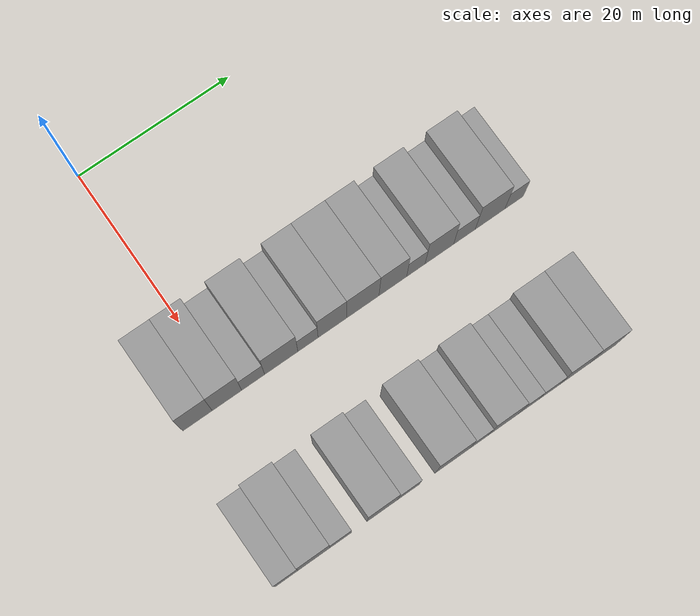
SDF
<sdf version="1.6">
 <world name="default">
  <model name="building_48">
   <static>1</static>
   <pose>25.0000 -4.2827 0 0.000000 0.000000 0.000000</pose>
   <link name="link">
    <pose>0 0 4.50 0 0 0</pose>
    <collision name="collision"><geometry><box><size>10.0000 3.7647 9.0000</size></box></geometry></collision>
    <visual name="visual">
     <cast_shadows>0</cast_shadows>
     <geometry><box><size>10.0000 3.7647 9.0000</size></box></geometry>
     <material>
      <script>
       <uri>model://grey_wall/materials/scripts</uri>
       <uri>model://grey_wall/materials/textures</uri>
       <name>vrc/grey_wall</name>
      </script>
     </material>
    </visual>
   </link>
  </model>
  <model name="building_49">
   <static>1</static>
   <pose>25.0000 -0.5022 0 0.000000 0.000000 0.000000</pose>
   <link name="link">
    <pose>0 0 4.50 0 0 0</pose>
    <collision name="collision"><geometry><box><size>10.0000 3.7964 9.0000</size></box></geometry></collision>
    <visual name="visual">
     <cast_shadows>0</cast_shadows>
     <geometry><box><size>10.0000 3.7964 9.0000</size></box></geometry>
     <material>
      <script>
       <uri>model://grey_wall/materials/scripts</uri>
       <uri>model://grey_wall/materials/textures</uri>
       <name>vrc/grey_wall</name>
      </script>
     </material>
    </visual>
   </link>
  </model>
  <model name="building_50">
   <static>1</static>
   <pose>25.0000 2.8793 0 0.000000 0.000000 0.000000</pose>
   <link name="link">
    <pose>0 0 3.00 0 0 0</pose>
    <collision name="collision"><geometry><box><size>10.0000 2.9666 6.0000</size></box></geometry></collision>
    <visual name="visual">
     <cast_shadows>0</cast_shadows>
     <geometry><box><size>10.0000 2.9666 6.0000</size></box></geometry>
     <material>
      <script>
       <uri>model://grey_wall/materials/scripts</uri>
       <uri>model://grey_wall/materials/textures</uri>
       <name>vrc/grey_wall</name>
      </script>
     </material>
    </visual>
   </link>
  </model>
  <model name="building_51">
   <static>1</static>
   <pose>25.0000 6.5234 0 0.000000 0.000000 0.000000</pose>
   <link name="link">
    <pose>0 0 4.50 0 0 0</pose>
    <collision name="collision"><geometry><box><size>10.0000 4.3214 9.0000</size></box></geometry></collision>
    <visual name="visual">
     <cast_shadows>0</cast_shadows>
     <geometry><box><size>10.0000 4.3214 9.0000</size></box></geometry>
     <material>
      <script>
       <uri>model://grey_wall/materials/scripts</uri>
       <uri>model://grey_wall/materials/textures</uri>
       <name>vrc/grey_wall</name>
      </script>
     </material>
    </visual>
   </link>
  </model>
  <model name="building_52">
   <static>1</static>
   <pose>25.0000 9.9989 0 0.000000 0.000000 0.000000</pose>
   <link name="link">
    <pose>0 0 3.00 0 0 0</pose>
    <collision name="collision"><geometry><box><size>10.0000 2.6296 6.0000</size></box></geometry></collision>
    <visual name="visual">
     <cast_shadows>0</cast_shadows>
     <geometry><box><size>10.0000 2.6296 6.0000</size></box></geometry>
     <material>
      <script>
       <uri>model://grey_wall/materials/scripts</uri>
       <uri>model://grey_wall/materials/textures</uri>
       <name>vrc/grey_wall</name>
      </script>
     </material>
    </visual>
   </link>
  </model>
  <model name="building_53">
   <static>1</static>
   <pose>25.0000 13.1832 0 0.000000 0.000000 0.000000</pose>
   <link name="link">
    <pose>0 0 4.50 0 0 0</pose>
    <collision name="collision"><geometry><box><size>10.0000 3.7391 9.0000</size></box></geometry></collision>
    <visual name="visual">
     <cast_shadows>0</cast_shadows>
     <geometry><box><size>10.0000 3.7391 9.0000</size></box></geometry>
     <material>
      <script>
       <uri>model://grey_wall/materials/scripts</uri>
       <uri>model://grey_wall/materials/textures</uri>
       <name>vrc/grey_wall</name>
      </script>
     </material>
    </visual>
   </link>
  </model>
  <model name="building_54">
   <static>1</static>
   <pose>25.0000 17.1880 0 0.000000 0.000000 0.000000</pose>
   <link name="link">
    <pose>0 0 4.50 0 0 0</pose>
    <collision name="collision"><geometry><box><size>10.0000 4.2704 9.0000</size></box></geometry></collision>
    <visual name="visual">
     <cast_shadows>0</cast_shadows>
     <geometry><box><size>10.0000 4.2704 9.0000</size></box></geometry>
     <material>
      <script>
       <uri>model://grey_wall/materials/scripts</uri>
       <uri>model://grey_wall/materials/textures</uri>
       <name>vrc/grey_wall</name>
      </script>
     </material>
    </visual>
   </link>
  </model>
  <model name="building_55">
   <static>1</static>
   <pose>25.0000 21.1577 0 0.000000 0.000000 0.000000</pose>
   <link name="link">
    <pose>0 0 4.50 0 0 0</pose>
    <collision name="collision"><geometry><box><size>10.0000 3.6692 9.0000</size></box></geometry></collision>
    <visual name="visual">
     <cast_shadows>0</cast_shadows>
     <geometry><box><size>10.0000 3.6692 9.0000</size></box></geometry>
     <material>
      <script>
       <uri>model://grey_wall/materials/scripts</uri>
       <uri>model://grey_wall/materials/textures</uri>
       <name>vrc/grey_wall</name>
      </script>
     </material>
    </visual>
   </link>
  </model>
  <model name="building_56">
   <static>1</static>
   <pose>25.0000 24.2247 0 0.000000 0.000000 0.000000</pose>
   <link name="link">
    <pose>0 0 3.00 0 0 0</pose>
    <collision name="collision"><geometry><box><size>10.0000 2.4648 6.0000</size></box></geometry></collision>
    <visual name="visual">
     <cast_shadows>0</cast_shadows>
     <geometry><box><size>10.0000 2.4648 6.0000</size></box></geometry>
     <material>
      <script>
       <uri>model://grey_wall/materials/scripts</uri>
       <uri>model://grey_wall/materials/textures</uri>
       <name>vrc/grey_wall</name>
      </script>
     </material>
    </visual>
   </link>
  </model>
  <model name="building_57">
   <static>1</static>
   <pose>25.0000 27.3652 0 0.000000 0.000000 0.000000</pose>
   <link name="link">
    <pose>0 0 4.50 0 0 0</pose>
    <collision name="collision"><geometry><box><size>10.0000 3.8161 9.0000</size></box></geometry></collision>
    <visual name="visual">
     <cast_shadows>0</cast_shadows>
     <geometry><box><size>10.0000 3.8161 9.0000</size></box></geometry>
     <material>
      <script>
       <uri>model://grey_wall/materials/scripts</uri>
       <uri>model://grey_wall/materials/textures</uri>
       <name>vrc/grey_wall</name>
      </script>
     </material>
    </visual>
   </link>
  </model>
  <model name="building_58">
   <static>1</static>
   <pose>25.0000 30.7295 0 0.000000 0.000000 0.000000</pose>
   <link name="link">
    <pose>0 0 3.00 0 0 0</pose>
    <collision name="collision"><geometry><box><size>10.0000 2.9127 6.0000</size></box></geometry></collision>
    <visual name="visual">
     <cast_shadows>0</cast_shadows>
     <geometry><box><size>10.0000 2.9127 6.0000</size></box></geometry>
     <material>
      <script>
       <uri>model://grey_wall/materials/scripts</uri>
       <uri>model://grey_wall/materials/textures</uri>
       <name>vrc/grey_wall</name>
      </script>
     </material>
    </visual>
   </link>
  </model>
  <model name="building_59">
   <static>1</static>
   <pose>25.0000 34.1914 0 0.000000 0.000000 0.000000</pose>
   <link name="link">
    <pose>0 0 4.50 0 0 0</pose>
    <collision name="collision"><geometry><box><size>10.0000 4.0110 9.0000</size></box></geometry></collision>
    <visual name="visual">
     <cast_shadows>0</cast_shadows>
     <geometry><box><size>10.0000 4.0110 9.0000</size></box></geometry>
     <material>
      <script>
       <uri>model://grey_wall/materials/scripts</uri>
       <uri>model://grey_wall/materials/textures</uri>
       <name>vrc/grey_wall</name>
      </script>
     </material>
    </visual>
   </link>
  </model>
  <model name="building_60">
   <static>1</static>
   <pose>25.0000 37.4595 0 0.000000 0.000000 0.000000</pose>
   <link name="link">
    <pose>0 0 3.00 0 0 0</pose>
    <collision name="collision"><geometry><box><size>10.0000 2.5252 6.0000</size></box></geometry></collision>
    <visual name="visual">
     <cast_shadows>0</cast_shadows>
     <geometry><box><size>10.0000 2.5252 6.0000</size></box></geometry>
     <material>
      <script>
       <uri>model://grey_wall/materials/scripts</uri>
       <uri>model://grey_wall/materials/textures</uri>
       <name>vrc/grey_wall</name>
      </script>
     </material>
    </visual>
   </link>
  </model>
  <model name="building_148">
   <static>1</static>
   <pose>44.0000 -5.8447 0 0.000000 0.000000 0.000000</pose>
   <link name="link">
    <pose>0 0 3.00 0 0 0</pose>
    <collision name="collision"><geometry><box><size>10.0000 2.9448 6.0000</size></box></geometry></collision>
    <visual name="visual">
     <cast_shadows>0</cast_shadows>
     <geometry><box><size>10.0000 2.9448 6.0000</size></box></geometry>
     <material>
      <script>
       <uri>model://grey_wall/materials/scripts</uri>
       <uri>model://grey_wall/materials/textures</uri>
       <name>vrc/grey_wall</name>
      </script>
     </material>
    </visual>
   </link>
  </model>
  <model name="building_149">
   <static>1</static>
   <pose>44.0000 -2.3758 0 0.000000 0.000000 0.000000</pose>
   <link name="link">
    <pose>0 0 4.50 0 0 0</pose>
    <collision name="collision"><geometry><box><size>10.0000 3.9930 9.0000</size></box></geometry></collision>
    <visual name="visual">
     <cast_shadows>0</cast_shadows>
     <geometry><box><size>10.0000 3.9930 9.0000</size></box></geometry>
     <material>
      <script>
       <uri>model://grey_wall/materials/scripts</uri>
       <uri>model://grey_wall/materials/textures</uri>
       <name>vrc/grey_wall</name>
      </script>
     </material>
    </visual>
   </link>
  </model>
  <model name="building_150">
   <static>1</static>
   <pose>44.0000 0.9706 0 0.000000 0.000000 0.000000</pose>
   <link name="link">
    <pose>0 0 3.00 0 0 0</pose>
    <collision name="collision"><geometry><box><size>10.0000 2.6998 6.0000</size></box></geometry></collision>
    <visual name="visual">
     <cast_shadows>0</cast_shadows>
     <geometry><box><size>10.0000 2.6998 6.0000</size></box></geometry>
     <material>
      <script>
       <uri>model://grey_wall/materials/scripts</uri>
       <uri>model://grey_wall/materials/textures</uri>
       <name>vrc/grey_wall</name>
      </script>
     </material>
    </visual>
   </link>
  </model>
  <model name="building_151">
   <static>1</static>
   <pose>44.0000 6.2876 0 0.000000 0.000000 0.000000</pose>
   <link name="link">
    <pose>0 0 4.50 0 0 0</pose>
    <collision name="collision"><geometry><box><size>10.0000 3.9342 9.0000</size></box></geometry></collision>
    <visual name="visual">
     <cast_shadows>0</cast_shadows>
     <geometry><box><size>10.0000 3.9342 9.0000</size></box></geometry>
     <material>
      <script>
       <uri>model://grey_wall/materials/scripts</uri>
       <uri>model://grey_wall/materials/textures</uri>
       <name>vrc/grey_wall</name>
      </script>
     </material>
    </visual>
   </link>
  </model>
  <model name="building_152">
   <static>1</static>
   <pose>44.0000 9.6755 0 0.000000 0.000000 0.000000</pose>
   <link name="link">
    <pose>0 0 3.00 0 0 0</pose>
    <collision name="collision"><geometry><box><size>10.0000 2.8417 6.0000</size></box></geometry></collision>
    <visual name="visual">
     <cast_shadows>0</cast_shadows>
     <geometry><box><size>10.0000 2.8417 6.0000</size></box></geometry>
     <material>
      <script>
       <uri>model://grey_wall/materials/scripts</uri>
       <uri>model://grey_wall/materials/textures</uri>
       <name>vrc/grey_wall</name>
      </script>
     </material>
    </visual>
   </link>
  </model>
  <model name="building_153">
   <static>1</static>
   <pose>44.0000 15.3224 0 0.000000 0.000000 0.000000</pose>
   <link name="link">
    <pose>0 0 4.50 0 0 0</pose>
    <collision name="collision"><geometry><box><size>10.0000 4.4522 9.0000</size></box></geometry></collision>
    <visual name="visual">
     <cast_shadows>0</cast_shadows>
     <geometry><box><size>10.0000 4.4522 9.0000</size></box></geometry>
     <material>
      <script>
       <uri>model://grey_wall/materials/scripts</uri>
       <uri>model://grey_wall/materials/textures</uri>
       <name>vrc/grey_wall</name>
      </script>
     </material>
    </visual>
   </link>
  </model>
  <model name="building_154">
   <static>1</static>
   <pose>44.0000 18.8173 0 0.000000 0.000000 0.000000</pose>
   <link name="link">
    <pose>0 0 3.00 0 0 0</pose>
    <collision name="collision"><geometry><box><size>10.0000 2.5375 6.0000</size></box></geometry></collision>
    <visual name="visual">
     <cast_shadows>0</cast_shadows>
     <geometry><box><size>10.0000 2.5375 6.0000</size></box></geometry>
     <material>
      <script>
       <uri>model://grey_wall/materials/scripts</uri>
       <uri>model://grey_wall/materials/textures</uri>
       <name>vrc/grey_wall</name>
      </script>
     </material>
    </visual>
   </link>
  </model>
  <model name="building_155">
   <static>1</static>
   <pose>44.0000 22.0642 0 0.000000 0.000000 0.000000</pose>
   <link name="link">
    <pose>0 0 4.50 0 0 0</pose>
    <collision name="collision"><geometry><box><size>10.0000 3.9563 9.0000</size></box></geometry></collision>
    <visual name="visual">
     <cast_shadows>0</cast_shadows>
     <geometry><box><size>10.0000 3.9563 9.0000</size></box></geometry>
     <material>
      <script>
       <uri>model://grey_wall/materials/scripts</uri>
       <uri>model://grey_wall/materials/textures</uri>
       <name>vrc/grey_wall</name>
      </script>
     </material>
    </visual>
   </link>
  </model>
  <model name="building_156">
   <static>1</static>
   <pose>44.0000 25.3382 0 0.000000 0.000000 0.000000</pose>
   <link name="link">
    <pose>0 0 3.00 0 0 0</pose>
    <collision name="collision"><geometry><box><size>10.0000 2.5917 6.0000</size></box></geometry></collision>
    <visual name="visual">
     <cast_shadows>0</cast_shadows>
     <geometry><box><size>10.0000 2.5917 6.0000</size></box></geometry>
     <material>
      <script>
       <uri>model://grey_wall/materials/scripts</uri>
       <uri>model://grey_wall/materials/textures</uri>
       <name>vrc/grey_wall</name>
      </script>
     </material>
    </visual>
   </link>
  </model>
  <model name="building_157">
   <static>1</static>
   <pose>44.0000 28.0301 0 0.000000 0.000000 0.000000</pose>
   <link name="link">
    <pose>0 0 3.00 0 0 0</pose>
    <collision name="collision"><geometry><box><size>10.0000 2.7919 6.0000</size></box></geometry></collision>
    <visual name="visual">
     <cast_shadows>0</cast_shadows>
     <geometry><box><size>10.0000 2.7919 6.0000</size></box></geometry>
     <material>
      <script>
       <uri>model://grey_wall/materials/scripts</uri>
       <uri>model://grey_wall/materials/textures</uri>
       <name>vrc/grey_wall</name>
      </script>
     </material>
    </visual>
   </link>
  </model>
  <model name="building_158">
   <static>1</static>
   <pose>44.0000 31.4137 0 0.000000 0.000000 0.000000</pose>
   <link name="link">
    <pose>0 0 4.50 0 0 0</pose>
    <collision name="collision"><geometry><box><size>10.0000 3.9753 9.0000</size></box></geometry></collision>
    <visual name="visual">
     <cast_shadows>0</cast_shadows>
     <geometry><box><size>10.0000 3.9753 9.0000</size></box></geometry>
     <material>
      <script>
       <uri>model://grey_wall/materials/scripts</uri>
       <uri>model://grey_wall/materials/textures</uri>
       <name>vrc/grey_wall</name>
      </script>
     </material>
    </visual>
   </link>
  </model>
  <model name="building_159">
   <static>1</static>
   <pose>44.0000 35.2061 0 0.000000 0.000000 0.000000</pose>
   <link name="link">
    <pose>0 0 4.50 0 0 0</pose>
    <collision name="collision"><geometry><box><size>10.0000 3.6097 9.0000</size></box></geometry></collision>
    <visual name="visual">
     <cast_shadows>0</cast_shadows>
     <geometry><box><size>10.0000 3.6097 9.0000</size></box></geometry>
     <material>
      <script>
       <uri>model://grey_wall/materials/scripts</uri>
       <uri>model://grey_wall/materials/textures</uri>
       <name>vrc/grey_wall</name>
      </script>
     </material>
    </visual>
   </link>
  </model>
 </world>
</sdf>
